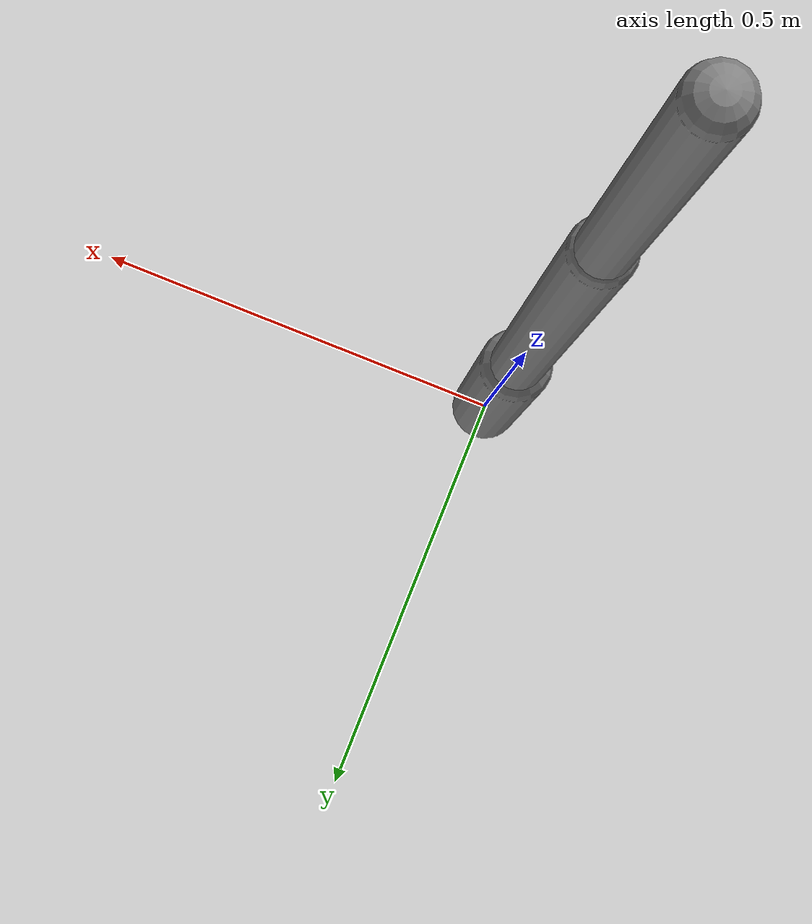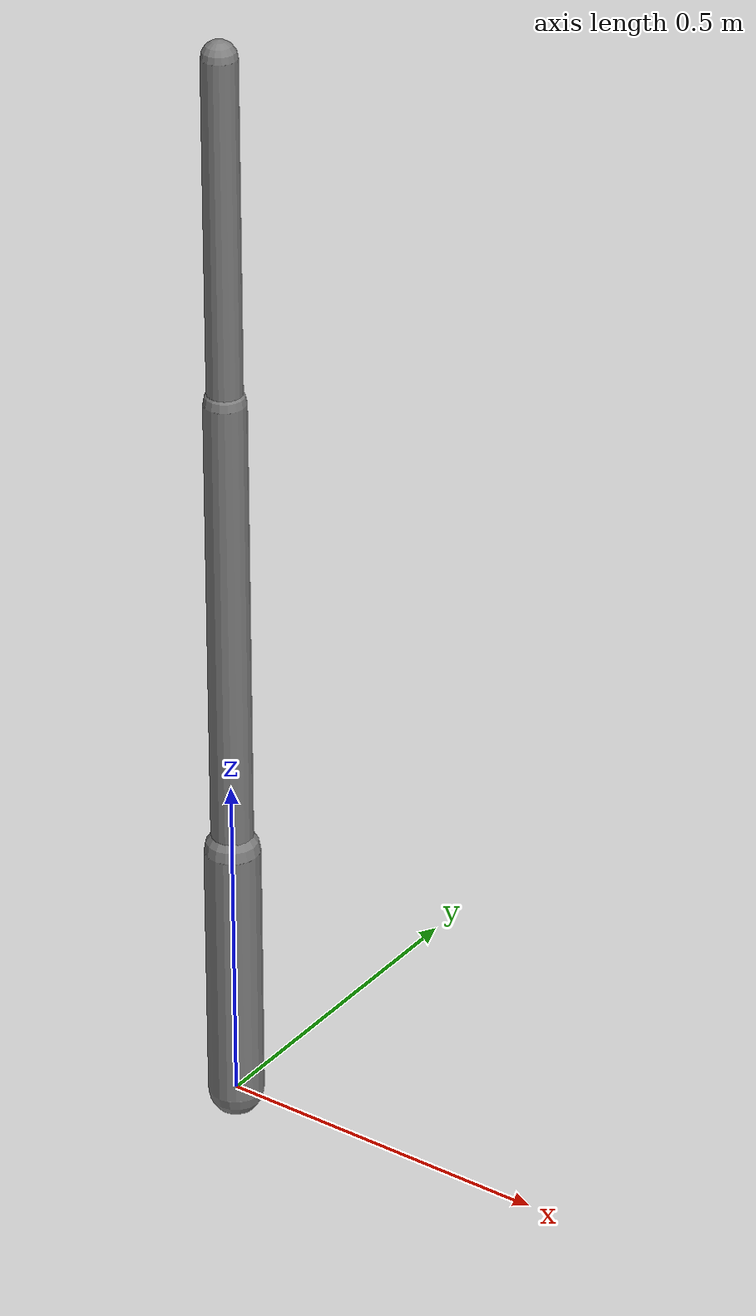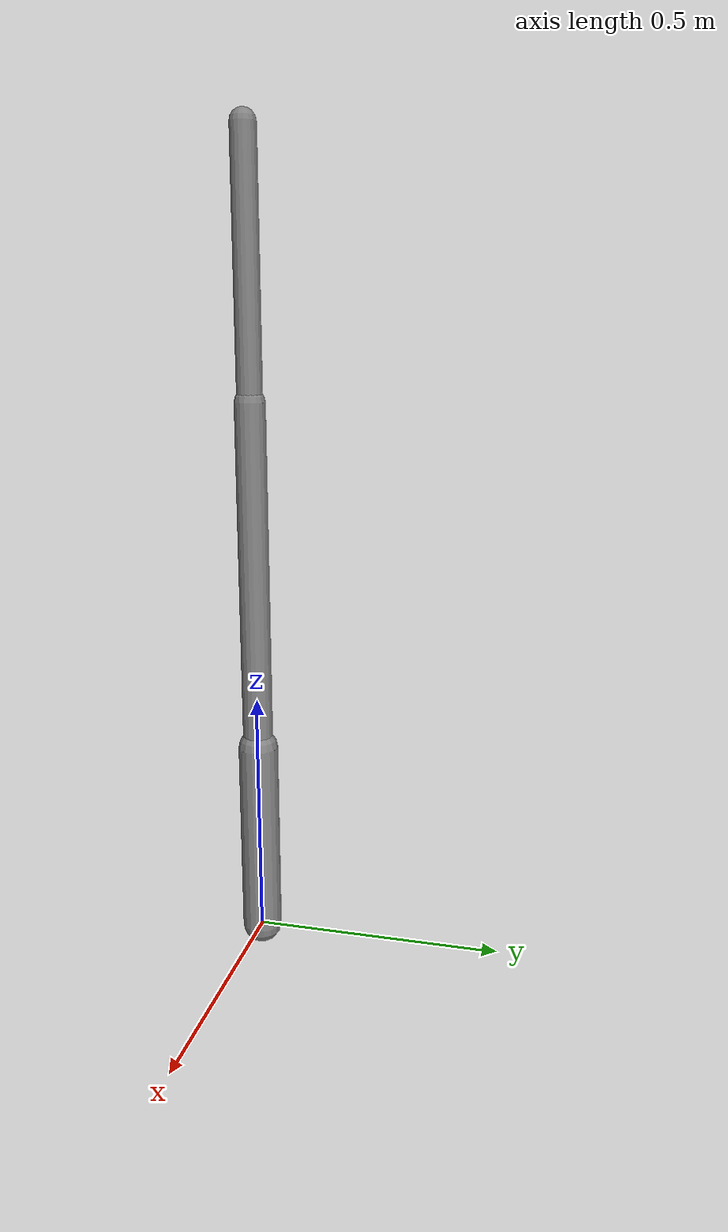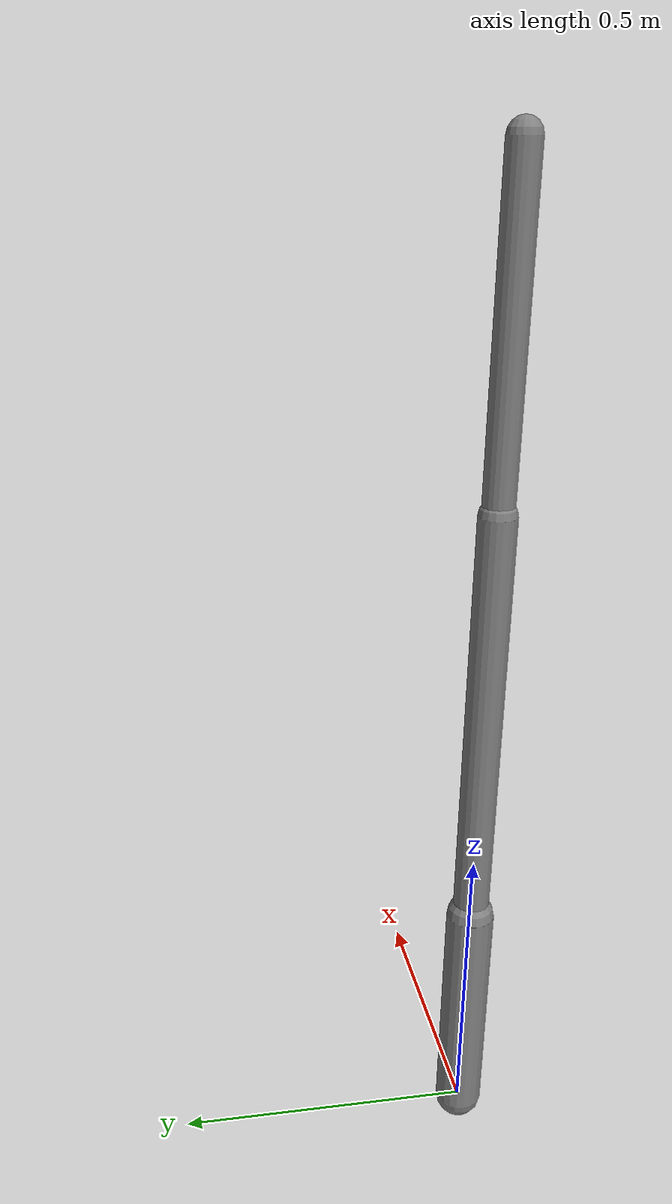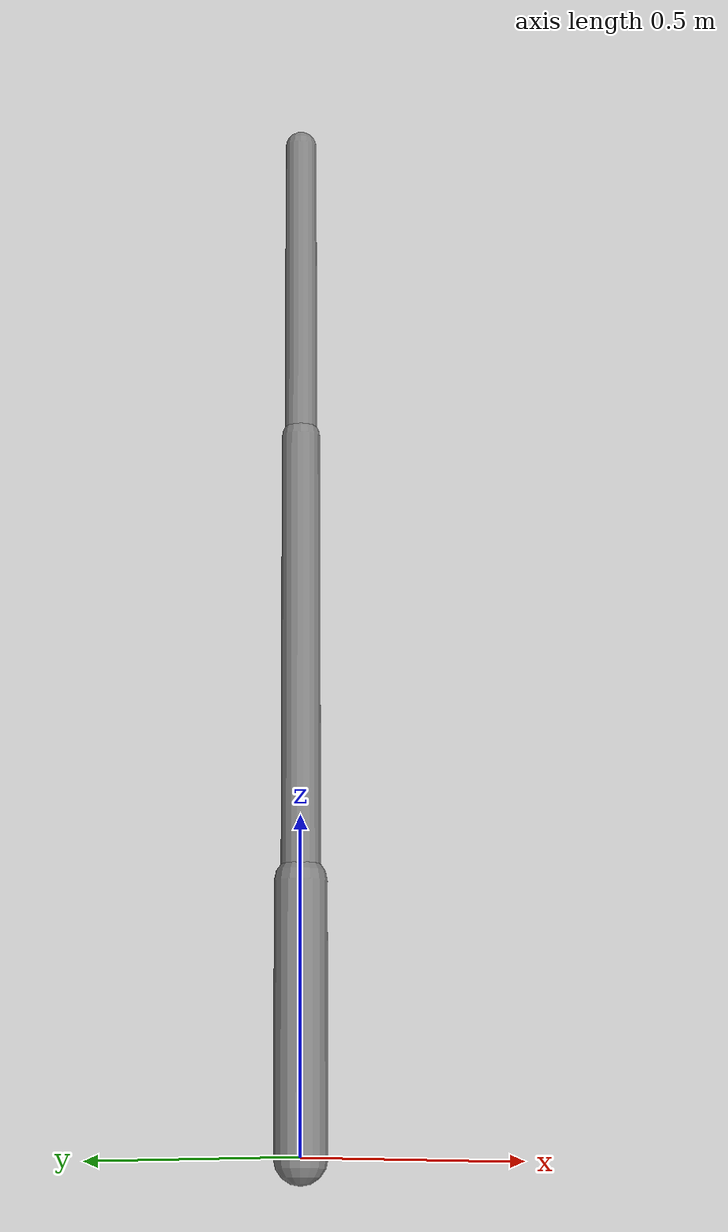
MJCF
<mujoco model="arm3dof_long">
  <option gravity="0 0 -9.81" timestep="0.001"/>
  <worldbody>
    <body name="column" pos="0 0 0">
      <joint name="yaw" type="hinge" axis="0 0 1" pos="0 0 0"/>
      <inertial pos="0 0 0.2" mass="2.0" diaginertia="0.0266667 0.0266667 0.002"/>
      <geom name="column_geom" type="capsule" fromto="0 0 0  0 0 0.4" size="0.04"/>
      <body name="upper_arm" pos="0 0 0.4">
        <joint name="shoulder" type="hinge" axis="0 1 0" pos="0 0 0"/>
        <inertial pos="0 0 0.35" mass="1.4" diaginertia="0.0571667 0.0571667 0.0007"/>
        <geom name="upper_geom" type="capsule" fromto="0 0 0  0 0 0.7" size="0.03"/>
        <body name="forearm" pos="0 0 0.7">
          <joint name="elbow" type="hinge" axis="0 1 0" pos="0 0 0"/>
          <inertial pos="0 0 0.25" mass="1.0" diaginertia="0.0208333 0.0208333 0.0005"/>
          <geom name="fore_geom" type="capsule" fromto="0 0 0  0 0 0.5" size="0.025"/>
          <site name="ee" pos="0 0 0.5"/>
        </body>
      </body>
    </body>
  </worldbody>
  <actuator>
    <position name="yaw_servo" joint="yaw" kp="800"/>
    <position name="shoulder_servo" joint="shoulder" kp="800"/>
    <position name="elbow_servo" joint="elbow" kp="800"/>
  </actuator>
</mujoco>
